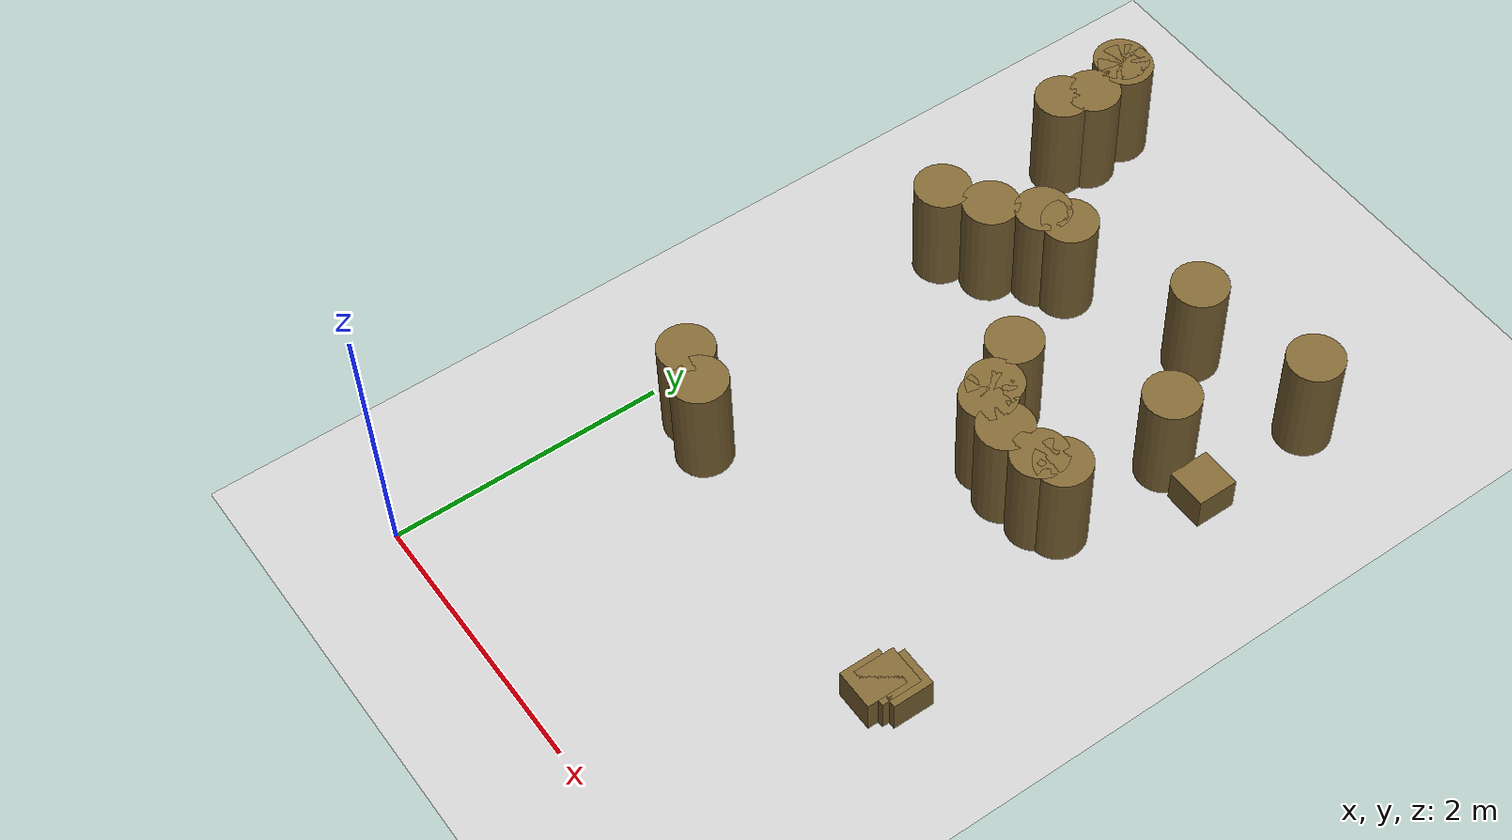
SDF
<sdf version="1.7">
 <world name="default">
  <model name="ground_plane">
   <static>1</static>
   <link name="link">
    <collision name="collision">
     <geometry><plane><normal>0 0 1</normal><size>100 100</size></plane></geometry>
     <surface><friction><ode><mu>100</mu><mu2>50</mu2></ode></friction></surface>
    </collision>
    <visual name="visual">
     <cast_shadows>0</cast_shadows>
     <geometry><plane><normal>0 0 1</normal><size>100 100</size></plane></geometry>
     <material>
      <script><uri>file://media/materials/scripts/gazebo.material</uri><name>Gazebo/Grey</name></script>
     </material>
    </visual>
   </link>
  </model>
  <model name="mini_cylinder_0_clone_0_clone_clone_clone_clone_12">
   <link name="link">
    <inertial>
     <mass>1</mass>
     <inertia><ixx>0.145833</ixx><ixy>0</ixy><ixz>0</ixz><iyy>0.145833</iyy><iyz>0</iyz><izz>0.125</izz></inertia>
    </inertial>
    <visual name="visual">
     <geometry><cylinder><radius>0.2</radius><length>0.8</length></cylinder></geometry>
     <material>
      <script><name>Gazebo/Grey</name><uri>file://media/materials/scripts/gazebo.material</uri></script>
      <shader type="vertex"><normal_map>__default__</normal_map></shader>
      <ambient>0.5 0.4 0.2 1</ambient>
      <diffuse>0.7 0.7 0.7 1</diffuse>
      <specular>0.01 0.01 0.01 1</specular>
      <emissive>0 0 0 1</emissive>
     </material>
    </visual>
    <collision name="collision">
     <geometry><cylinder><radius>0.2</radius><length>0.8</length></cylinder></geometry>
     <surface>
      <friction>
       <ode><mu>1</mu><mu2>1</mu2><fdir1>0 0 0</fdir1><slip1>0</slip1><slip2>0</slip2></ode>
       <torsional>
        <coefficient>1</coefficient>
        <patch_radius>0</patch_radius>
        <surface_radius>0</surface_radius>
        <use_patch_radius>1</use_patch_radius>
        <ode><slip>0</slip></ode>
       </torsional>
      </friction>
      <bounce><restitution_coefficient>0</restitution_coefficient><threshold>1e+06</threshold></bounce>
      <contact>
       <collide_without_contact>0</collide_without_contact>
       <collide_without_contact_bitmask>1</collide_without_contact_bitmask>
       <collide_bitmask>1</collide_bitmask>
       <ode>
        <soft_cfm>0</soft_cfm>
        <soft_erp>0.2</soft_erp>
        <kp>1e+13</kp>
        <kd>1</kd>
        <max_vel>0.01</max_vel>
        <min_depth>0</min_depth>
       </ode>
       <bullet>
        <split_impulse>1</split_impulse>
        <split_impulse_penetration_threshold>-0.01</split_impulse_penetration_threshold>
        <soft_cfm>0</soft_cfm>
        <soft_erp>0.2</soft_erp>
        <kp>1e+13</kp>
        <kd>1</kd>
       </bullet>
      </contact>
     </surface>
    </collision>
   </link>
   <static>1</static>
   <pose>1.56031 3.83174 0.4 0 -0 0</pose>
  </model>
  <model name="mini_cylinder_0_clone_0_clone_clone_clone_clone_clone">
   <link name="link">
    <inertial>
     <mass>1</mass>
     <inertia><ixx>0.145833</ixx><ixy>0</ixy><ixz>0</ixz><iyy>0.145833</iyy><iyz>0</iyz><izz>0.125</izz></inertia>
    </inertial>
    <visual name="visual">
     <geometry><cylinder><radius>0.2</radius><length>0.8</length></cylinder></geometry>
     <material>
      <script><name>Gazebo/Grey</name><uri>file://media/materials/scripts/gazebo.material</uri></script>
      <shader type="vertex"><normal_map>__default__</normal_map></shader>
      <ambient>0.5 0.4 0.2 1</ambient>
      <diffuse>0.7 0.7 0.7 1</diffuse>
      <specular>0.01 0.01 0.01 1</specular>
      <emissive>0 0 0 1</emissive>
     </material>
    </visual>
    <collision name="collision">
     <geometry><cylinder><radius>0.2</radius><length>0.8</length></cylinder></geometry>
     <surface>
      <friction>
       <ode><mu>1</mu><mu2>1</mu2><fdir1>0 0 0</fdir1><slip1>0</slip1><slip2>0</slip2></ode>
       <torsional>
        <coefficient>1</coefficient>
        <patch_radius>0</patch_radius>
        <surface_radius>0</surface_radius>
        <use_patch_radius>1</use_patch_radius>
        <ode><slip>0</slip></ode>
       </torsional>
      </friction>
      <bounce><restitution_coefficient>0</restitution_coefficient><threshold>1e+06</threshold></bounce>
      <contact>
       <collide_without_contact>0</collide_without_contact>
       <collide_without_contact_bitmask>1</collide_without_contact_bitmask>
       <collide_bitmask>1</collide_bitmask>
       <ode>
        <soft_cfm>0</soft_cfm>
        <soft_erp>0.2</soft_erp>
        <kp>1e+13</kp>
        <kd>1</kd>
        <max_vel>0.01</max_vel>
        <min_depth>0</min_depth>
       </ode>
       <bullet>
        <split_impulse>1</split_impulse>
        <split_impulse_penetration_threshold>-0.01</split_impulse_penetration_threshold>
        <soft_cfm>0</soft_cfm>
        <soft_erp>0.2</soft_erp>
        <kp>1e+13</kp>
        <kd>1</kd>
       </bullet>
      </contact>
     </surface>
    </collision>
   </link>
   <static>1</static>
   <pose>0.056527 5.99089 0.4 0 -0 0</pose>
  </model>
  <model name="mini_cylinder_0_clone_0_clone_clone_clone_clone_clone_0">
   <link name="link">
    <inertial>
     <mass>1</mass>
     <inertia><ixx>0.145833</ixx><ixy>0</ixy><ixz>0</ixz><iyy>0.145833</iyy><iyz>0</iyz><izz>0.125</izz></inertia>
    </inertial>
    <visual name="visual">
     <geometry><cylinder><radius>0.2</radius><length>0.8</length></cylinder></geometry>
     <material>
      <script><name>Gazebo/Grey</name><uri>file://media/materials/scripts/gazebo.material</uri></script>
      <shader type="vertex"><normal_map>__default__</normal_map></shader>
      <ambient>0.5 0.4 0.2 1</ambient>
      <diffuse>0.7 0.7 0.7 1</diffuse>
      <specular>0.01 0.01 0.01 1</specular>
      <emissive>0 0 0 1</emissive>
     </material>
    </visual>
    <collision name="collision">
     <geometry><cylinder><radius>0.2</radius><length>0.8</length></cylinder></geometry>
     <surface>
      <friction>
       <ode><mu>1</mu><mu2>1</mu2><fdir1>0 0 0</fdir1><slip1>0</slip1><slip2>0</slip2></ode>
       <torsional>
        <coefficient>1</coefficient>
        <patch_radius>0</patch_radius>
        <surface_radius>0</surface_radius>
        <use_patch_radius>1</use_patch_radius>
        <ode><slip>0</slip></ode>
       </torsional>
      </friction>
      <bounce><restitution_coefficient>0</restitution_coefficient><threshold>1e+06</threshold></bounce>
      <contact>
       <collide_without_contact>0</collide_without_contact>
       <collide_without_contact_bitmask>1</collide_without_contact_bitmask>
       <collide_bitmask>1</collide_bitmask>
       <ode>
        <soft_cfm>0</soft_cfm>
        <soft_erp>0.2</soft_erp>
        <kp>1e+13</kp>
        <kd>1</kd>
        <max_vel>0.01</max_vel>
        <min_depth>0</min_depth>
       </ode>
       <bullet>
        <split_impulse>1</split_impulse>
        <split_impulse_penetration_threshold>-0.01</split_impulse_penetration_threshold>
        <soft_cfm>0</soft_cfm>
        <soft_erp>0.2</soft_erp>
        <kp>1e+13</kp>
        <kd>1</kd>
       </bullet>
      </contact>
     </surface>
    </collision>
   </link>
   <static>1</static>
   <pose>0 6 0.4 0 -0 0</pose>
  </model>
  <model name="mini_cylinder_0_clone_0_clone_clone_clone_clone_clone_1">
   <link name="link">
    <inertial>
     <mass>1</mass>
     <inertia><ixx>0.145833</ixx><ixy>0</ixy><ixz>0</ixz><iyy>0.145833</iyy><iyz>0</iyz><izz>0.125</izz></inertia>
    </inertial>
    <visual name="visual">
     <geometry><cylinder><radius>0.2</radius><length>0.8</length></cylinder></geometry>
     <material>
      <script><name>Gazebo/Grey</name><uri>file://media/materials/scripts/gazebo.material</uri></script>
      <shader type="vertex"><normal_map>__default__</normal_map></shader>
      <ambient>0.5 0.4 0.2 1</ambient>
      <diffuse>0.7 0.7 0.7 1</diffuse>
      <specular>0.01 0.01 0.01 1</specular>
      <emissive>0 0 0 1</emissive>
     </material>
    </visual>
    <collision name="collision">
     <geometry><cylinder><radius>0.2</radius><length>0.8</length></cylinder></geometry>
     <surface>
      <friction>
       <ode><mu>1</mu><mu2>1</mu2><fdir1>0 0 0</fdir1><slip1>0</slip1><slip2>0</slip2></ode>
       <torsional>
        <coefficient>1</coefficient>
        <patch_radius>0</patch_radius>
        <surface_radius>0</surface_radius>
        <use_patch_radius>1</use_patch_radius>
        <ode><slip>0</slip></ode>
       </torsional>
      </friction>
      <bounce><restitution_coefficient>0</restitution_coefficient><threshold>1e+06</threshold></bounce>
      <contact>
       <collide_without_contact>0</collide_without_contact>
       <collide_without_contact_bitmask>1</collide_without_contact_bitmask>
       <collide_bitmask>1</collide_bitmask>
       <ode>
        <soft_cfm>0</soft_cfm>
        <soft_erp>0.2</soft_erp>
        <kp>1e+13</kp>
        <kd>1</kd>
        <max_vel>0.01</max_vel>
        <min_depth>0</min_depth>
       </ode>
       <bullet>
        <split_impulse>1</split_impulse>
        <split_impulse_penetration_threshold>-0.01</split_impulse_penetration_threshold>
        <soft_cfm>0</soft_cfm>
        <soft_erp>0.2</soft_erp>
        <kp>1e+13</kp>
        <kd>1</kd>
       </bullet>
      </contact>
     </surface>
    </collision>
   </link>
   <static>1</static>
   <pose>0.119435 5.64487 0.4 0 -0 0</pose>
  </model>
  <model name="mini_cylinder_0_clone_0_clone_clone_clone_clone_clone_2">
   <link name="link">
    <inertial>
     <mass>1</mass>
     <inertia><ixx>0.145833</ixx><ixy>0</ixy><ixz>0</ixz><iyy>0.145833</iyy><iyz>0</iyz><izz>0.125</izz></inertia>
    </inertial>
    <visual name="visual">
     <geometry><cylinder><radius>0.2</radius><length>0.8</length></cylinder></geometry>
     <material>
      <script><name>Gazebo/Grey</name><uri>file://media/materials/scripts/gazebo.material</uri></script>
      <shader type="vertex"><normal_map>__default__</normal_map></shader>
      <ambient>0.5 0.4 0.2 1</ambient>
      <diffuse>0.7 0.7 0.7 1</diffuse>
      <specular>0.01 0.01 0.01 1</specular>
      <emissive>0 0 0 1</emissive>
     </material>
    </visual>
    <collision name="collision">
     <geometry><cylinder><radius>0.2</radius><length>0.8</length></cylinder></geometry>
     <surface>
      <friction>
       <ode><mu>1</mu><mu2>1</mu2><fdir1>0 0 0</fdir1><slip1>0</slip1><slip2>0</slip2></ode>
       <torsional>
        <coefficient>1</coefficient>
        <patch_radius>0</patch_radius>
        <surface_radius>0</surface_radius>
        <use_patch_radius>1</use_patch_radius>
        <ode><slip>0</slip></ode>
       </torsional>
      </friction>
      <bounce><restitution_coefficient>0</restitution_coefficient><threshold>1e+06</threshold></bounce>
      <contact>
       <collide_without_contact>0</collide_without_contact>
       <collide_without_contact_bitmask>1</collide_without_contact_bitmask>
       <collide_bitmask>1</collide_bitmask>
       <ode>
        <soft_cfm>0</soft_cfm>
        <soft_erp>0.2</soft_erp>
        <kp>1e+13</kp>
        <kd>1</kd>
        <max_vel>0.01</max_vel>
        <min_depth>0</min_depth>
       </ode>
       <bullet>
        <split_impulse>1</split_impulse>
        <split_impulse_penetration_threshold>-0.01</split_impulse_penetration_threshold>
        <soft_cfm>0</soft_cfm>
        <soft_erp>0.2</soft_erp>
        <kp>1e+13</kp>
        <kd>1</kd>
       </bullet>
      </contact>
     </surface>
    </collision>
   </link>
   <static>1</static>
   <pose>0.040798 5.4404 0.4 0 -0 0</pose>
  </model>
  <model name="mini_cylinder_0_clone_0_clone_clone_clone_clone_clone_7">
   <link name="link">
    <inertial>
     <mass>1</mass>
     <inertia><ixx>0.145833</ixx><ixy>0</ixy><ixz>0</ixz><iyy>0.145833</iyy><iyz>0</iyz><izz>0.125</izz></inertia>
    </inertial>
    <visual name="visual">
     <geometry><cylinder><radius>0.2</radius><length>0.8</length></cylinder></geometry>
     <material>
      <script><name>Gazebo/Grey</name><uri>file://media/materials/scripts/gazebo.material</uri></script>
      <shader type="vertex"><normal_map>__default__</normal_map></shader>
      <ambient>0.5 0.4 0.2 1</ambient>
      <diffuse>0.7 0.7 0.7 1</diffuse>
      <specular>0.01 0.01 0.01 1</specular>
      <emissive>0 0 0 1</emissive>
     </material>
    </visual>
    <collision name="collision">
     <geometry><cylinder><radius>0.2</radius><length>0.8</length></cylinder></geometry>
     <surface>
      <friction>
       <ode><mu>1</mu><mu2>1</mu2><fdir1>0 0 0</fdir1><slip1>0</slip1><slip2>0</slip2></ode>
       <torsional>
        <coefficient>1</coefficient>
        <patch_radius>0</patch_radius>
        <surface_radius>0</surface_radius>
        <use_patch_radius>1</use_patch_radius>
        <ode><slip>0</slip></ode>
       </torsional>
      </friction>
      <bounce><restitution_coefficient>0</restitution_coefficient><threshold>1e+06</threshold></bounce>
      <contact>
       <collide_without_contact>0</collide_without_contact>
       <collide_without_contact_bitmask>1</collide_without_contact_bitmask>
       <collide_bitmask>1</collide_bitmask>
       <ode>
        <soft_cfm>0</soft_cfm>
        <soft_erp>0.2</soft_erp>
        <kp>1e+13</kp>
        <kd>1</kd>
        <max_vel>0.01</max_vel>
        <min_depth>0</min_depth>
       </ode>
       <bullet>
        <split_impulse>1</split_impulse>
        <split_impulse_penetration_threshold>-0.01</split_impulse_penetration_threshold>
        <soft_cfm>0</soft_cfm>
        <soft_erp>0.2</soft_erp>
        <kp>1e+13</kp>
        <kd>1</kd>
       </bullet>
      </contact>
     </surface>
    </collision>
   </link>
   <static>1</static>
   <pose>0.213809 4.26061 0.4 0 -0 0</pose>
  </model>
  <model name="mini_cylinder_0_clone_0_clone_clone_clone_clone_clone_8">
   <link name="link">
    <inertial>
     <mass>1</mass>
     <inertia><ixx>0.145833</ixx><ixy>0</ixy><ixz>0</ixz><iyy>0.145833</iyy><iyz>0</iyz><izz>0.125</izz></inertia>
    </inertial>
    <visual name="visual">
     <geometry><cylinder><radius>0.2</radius><length>0.8</length></cylinder></geometry>
     <material>
      <script><name>Gazebo/Grey</name><uri>file://media/materials/scripts/gazebo.material</uri></script>
      <shader type="vertex"><normal_map>__default__</normal_map></shader>
      <ambient>0.5 0.4 0.2 1</ambient>
      <diffuse>0.7 0.7 0.7 1</diffuse>
      <specular>0.01 0.01 0.01 1</specular>
      <emissive>0 0 0 1</emissive>
     </material>
    </visual>
    <collision name="collision">
     <geometry><cylinder><radius>0.2</radius><length>0.8</length></cylinder></geometry>
     <surface>
      <friction>
       <ode><mu>1</mu><mu2>1</mu2><fdir1>0 0 0</fdir1><slip1>0</slip1><slip2>0</slip2></ode>
       <torsional>
        <coefficient>1</coefficient>
        <patch_radius>0</patch_radius>
        <surface_radius>0</surface_radius>
        <use_patch_radius>1</use_patch_radius>
        <ode><slip>0</slip></ode>
       </torsional>
      </friction>
      <bounce><restitution_coefficient>0</restitution_coefficient><threshold>1e+06</threshold></bounce>
      <contact>
       <collide_without_contact>0</collide_without_contact>
       <collide_without_contact_bitmask>1</collide_without_contact_bitmask>
       <collide_bitmask>1</collide_bitmask>
       <ode>
        <soft_cfm>0</soft_cfm>
        <soft_erp>0.2</soft_erp>
        <kp>1e+13</kp>
        <kd>1</kd>
        <max_vel>0.01</max_vel>
        <min_depth>0</min_depth>
       </ode>
       <bullet>
        <split_impulse>1</split_impulse>
        <split_impulse_penetration_threshold>-0.01</split_impulse_penetration_threshold>
        <soft_cfm>0</soft_cfm>
        <soft_erp>0.2</soft_erp>
        <kp>1e+13</kp>
        <kd>1</kd>
       </bullet>
      </contact>
     </surface>
    </collision>
   </link>
   <static>1</static>
   <pose>0.528375 4.43362 0.4 0 -0 0</pose>
  </model>
  <model name="mini_cylinder_0_clone_0_clone_clone_clone_clone_clone_9">
   <link name="link">
    <inertial>
     <mass>1</mass>
     <inertia><ixx>0.145833</ixx><ixy>0</ixy><ixz>0</ixz><iyy>0.145833</iyy><iyz>0</iyz><izz>0.125</izz></inertia>
    </inertial>
    <visual name="visual">
     <geometry><cylinder><radius>0.2</radius><length>0.8</length></cylinder></geometry>
     <material>
      <script><name>Gazebo/Grey</name><uri>file://media/materials/scripts/gazebo.material</uri></script>
      <shader type="vertex"><normal_map>__default__</normal_map></shader>
      <ambient>0.5 0.4 0.2 1</ambient>
      <diffuse>0.7 0.7 0.7 1</diffuse>
      <specular>0.01 0.01 0.01 1</specular>
      <emissive>0 0 0 1</emissive>
     </material>
    </visual>
    <collision name="collision">
     <geometry><cylinder><radius>0.2</radius><length>0.8</length></cylinder></geometry>
     <surface>
      <friction>
       <ode><mu>1</mu><mu2>1</mu2><fdir1>0 0 0</fdir1><slip1>0</slip1><slip2>0</slip2></ode>
       <torsional>
        <coefficient>1</coefficient>
        <patch_radius>0</patch_radius>
        <surface_radius>0</surface_radius>
        <use_patch_radius>1</use_patch_radius>
        <ode><slip>0</slip></ode>
       </torsional>
      </friction>
      <bounce><restitution_coefficient>0</restitution_coefficient><threshold>1e+06</threshold></bounce>
      <contact>
       <collide_without_contact>0</collide_without_contact>
       <collide_without_contact_bitmask>1</collide_without_contact_bitmask>
       <collide_bitmask>1</collide_bitmask>
       <ode>
        <soft_cfm>0</soft_cfm>
        <soft_erp>0.2</soft_erp>
        <kp>1e+13</kp>
        <kd>1</kd>
        <max_vel>0.01</max_vel>
        <min_depth>0</min_depth>
       </ode>
       <bullet>
        <split_impulse>1</split_impulse>
        <split_impulse_penetration_threshold>-0.01</split_impulse_penetration_threshold>
        <soft_cfm>0</soft_cfm>
        <soft_erp>0.2</soft_erp>
        <kp>1e+13</kp>
        <kd>1</kd>
       </bullet>
      </contact>
     </surface>
    </collision>
   </link>
   <static>1</static>
   <pose>0.780027 4.68527 0.4 0 -0 0</pose>
  </model>
  <model name="mini_cylinder_0_clone_0_clone_clone_clone_clone_clone_38">
   <link name="link">
    <inertial>
     <mass>1</mass>
     <inertia><ixx>0.145833</ixx><ixy>0</ixy><ixz>0</ixz><iyy>0.145833</iyy><iyz>0</iyz><izz>0.125</izz></inertia>
    </inertial>
    <visual name="visual">
     <geometry><cylinder><radius>0.2</radius><length>0.8</length></cylinder></geometry>
     <material>
      <script><name>Gazebo/Grey</name><uri>file://media/materials/scripts/gazebo.material</uri></script>
      <shader type="vertex"><normal_map>__default__</normal_map></shader>
      <ambient>0.5 0.4 0.2 1</ambient>
      <diffuse>0.7 0.7 0.7 1</diffuse>
      <specular>0.01 0.01 0.01 1</specular>
      <emissive>0 0 0 1</emissive>
     </material>
    </visual>
    <collision name="collision">
     <geometry><cylinder><radius>0.2</radius><length>0.8</length></cylinder></geometry>
     <surface>
      <friction>
       <ode><mu>1</mu><mu2>1</mu2><fdir1>0 0 0</fdir1><slip1>0</slip1><slip2>0</slip2></ode>
       <torsional>
        <coefficient>1</coefficient>
        <patch_radius>0</patch_radius>
        <surface_radius>0</surface_radius>
        <use_patch_radius>1</use_patch_radius>
        <ode><slip>0</slip></ode>
       </torsional>
      </friction>
      <bounce><restitution_coefficient>0</restitution_coefficient><threshold>1e+06</threshold></bounce>
      <contact>
       <collide_without_contact>0</collide_without_contact>
       <collide_without_contact_bitmask>1</collide_without_contact_bitmask>
       <collide_bitmask>1</collide_bitmask>
       <ode>
        <soft_cfm>0</soft_cfm>
        <soft_erp>0.2</soft_erp>
        <kp>1e+13</kp>
        <kd>1</kd>
        <max_vel>0.01</max_vel>
        <min_depth>0</min_depth>
       </ode>
       <bullet>
        <split_impulse>1</split_impulse>
        <split_impulse_penetration_threshold>-0.01</split_impulse_penetration_threshold>
        <soft_cfm>0</soft_cfm>
        <soft_erp>0.2</soft_erp>
        <kp>1e+13</kp>
        <kd>1</kd>
       </bullet>
      </contact>
     </surface>
    </collision>
   </link>
   <static>1</static>
   <pose>2.82524 5.31414 0.4 0 -0 0</pose>
  </model>
  <model name="mini_cylinder_0_clone_0_clone_clone_clone_clone_clone_39">
   <link name="link">
    <inertial>
     <mass>1</mass>
     <inertia><ixx>0.145833</ixx><ixy>0</ixy><ixz>0</ixz><iyy>0.145833</iyy><iyz>0</iyz><izz>0.125</izz></inertia>
    </inertial>
    <visual name="visual">
     <geometry><cylinder><radius>0.2</radius><length>0.8</length></cylinder></geometry>
     <material>
      <script><name>Gazebo/Grey</name><uri>file://media/materials/scripts/gazebo.material</uri></script>
      <shader type="vertex"><normal_map>__default__</normal_map></shader>
      <ambient>0.5 0.4 0.2 1</ambient>
      <diffuse>0.7 0.7 0.7 1</diffuse>
      <specular>0.01 0.01 0.01 1</specular>
      <emissive>0 0 0 1</emissive>
     </material>
    </visual>
    <collision name="collision">
     <geometry><cylinder><radius>0.2</radius><length>0.8</length></cylinder></geometry>
     <surface>
      <friction>
       <ode><mu>1</mu><mu2>1</mu2><fdir1>0 0 0</fdir1><slip1>0</slip1><slip2>0</slip2></ode>
       <torsional>
        <coefficient>1</coefficient>
        <patch_radius>0</patch_radius>
        <surface_radius>0</surface_radius>
        <use_patch_radius>1</use_patch_radius>
        <ode><slip>0</slip></ode>
       </torsional>
      </friction>
      <bounce><restitution_coefficient>0</restitution_coefficient><threshold>1e+06</threshold></bounce>
      <contact>
       <collide_without_contact>0</collide_without_contact>
       <collide_without_contact_bitmask>1</collide_without_contact_bitmask>
       <collide_bitmask>1</collide_bitmask>
       <ode>
        <soft_cfm>0</soft_cfm>
        <soft_erp>0.2</soft_erp>
        <kp>1e+13</kp>
        <kd>1</kd>
        <max_vel>0.01</max_vel>
        <min_depth>0</min_depth>
       </ode>
       <bullet>
        <split_impulse>1</split_impulse>
        <split_impulse_penetration_threshold>-0.01</split_impulse_penetration_threshold>
        <soft_cfm>0</soft_cfm>
        <soft_erp>0.2</soft_erp>
        <kp>1e+13</kp>
        <kd>1</kd>
       </bullet>
      </contact>
     </surface>
    </collision>
   </link>
   <static>1</static>
   <pose>1.913 5.10967 0.4 0 -0 0</pose>
  </model>
  <model name="mini_cylinder_0_clone_0_clone_clone_clone_clone_clone_40">
   <link name="link">
    <inertial>
     <mass>1</mass>
     <inertia><ixx>0.145833</ixx><ixy>0</ixy><ixz>0</ixz><iyy>0.145833</iyy><iyz>0</iyz><izz>0.125</izz></inertia>
    </inertial>
    <visual name="visual">
     <geometry><cylinder><radius>0.2</radius><length>0.8</length></cylinder></geometry>
     <material>
      <script><name>Gazebo/Grey</name><uri>file://media/materials/scripts/gazebo.material</uri></script>
      <shader type="vertex"><normal_map>__default__</normal_map></shader>
      <ambient>0.5 0.4 0.2 1</ambient>
      <diffuse>0.7 0.7 0.7 1</diffuse>
      <specular>0.01 0.01 0.01 1</specular>
      <emissive>0 0 0 1</emissive>
     </material>
    </visual>
    <collision name="collision">
     <geometry><cylinder><radius>0.2</radius><length>0.8</length></cylinder></geometry>
     <surface>
      <friction>
       <ode><mu>1</mu><mu2>1</mu2><fdir1>0 0 0</fdir1><slip1>0</slip1><slip2>0</slip2></ode>
       <torsional>
        <coefficient>1</coefficient>
        <patch_radius>0</patch_radius>
        <surface_radius>0</surface_radius>
        <use_patch_radius>1</use_patch_radius>
        <ode><slip>0</slip></ode>
       </torsional>
      </friction>
      <bounce><restitution_coefficient>0</restitution_coefficient><threshold>1e+06</threshold></bounce>
      <contact>
       <collide_without_contact>0</collide_without_contact>
       <collide_without_contact_bitmask>1</collide_without_contact_bitmask>
       <collide_bitmask>1</collide_bitmask>
       <ode>
        <soft_cfm>0</soft_cfm>
        <soft_erp>0.2</soft_erp>
        <kp>1e+13</kp>
        <kd>1</kd>
        <max_vel>0.01</max_vel>
        <min_depth>0</min_depth>
       </ode>
       <bullet>
        <split_impulse>1</split_impulse>
        <split_impulse_penetration_threshold>-0.01</split_impulse_penetration_threshold>
        <soft_cfm>0</soft_cfm>
        <soft_erp>0.2</soft_erp>
        <kp>1e+13</kp>
        <kd>1</kd>
       </bullet>
      </contact>
     </surface>
    </collision>
   </link>
   <static>1</static>
   <pose>2.51068 4.37044 0.4 0 -0 0</pose>
  </model>
  <model name="mini_cylinder_0_clone_0_clone_clone_clone_clone_clone_42">
   <link name="link">
    <inertial>
     <mass>1</mass>
     <inertia><ixx>0.145833</ixx><ixy>0</ixy><ixz>0</ixz><iyy>0.145833</iyy><iyz>0</iyz><izz>0.125</izz></inertia>
    </inertial>
    <visual name="visual">
     <geometry><cylinder><radius>0.2</radius><length>0.8</length></cylinder></geometry>
     <material>
      <script><name>Gazebo/Grey</name><uri>file://media/materials/scripts/gazebo.material</uri></script>
      <shader type="vertex"><normal_map>__default__</normal_map></shader>
      <ambient>0.5 0.4 0.2 1</ambient>
      <diffuse>0.7 0.7 0.7 1</diffuse>
      <specular>0.01 0.01 0.01 1</specular>
      <emissive>0 0 0 1</emissive>
     </material>
    </visual>
    <collision name="collision">
     <geometry><cylinder><radius>0.2</radius><length>0.8</length></cylinder></geometry>
     <surface>
      <friction>
       <ode><mu>1</mu><mu2>1</mu2><fdir1>0 0 0</fdir1><slip1>0</slip1><slip2>0</slip2></ode>
       <torsional>
        <coefficient>1</coefficient>
        <patch_radius>0</patch_radius>
        <surface_radius>0</surface_radius>
        <use_patch_radius>1</use_patch_radius>
        <ode><slip>0</slip></ode>
       </torsional>
      </friction>
      <bounce><restitution_coefficient>0</restitution_coefficient><threshold>1e+06</threshold></bounce>
      <contact>
       <collide_without_contact>0</collide_without_contact>
       <collide_without_contact_bitmask>1</collide_without_contact_bitmask>
       <collide_bitmask>1</collide_bitmask>
       <ode>
        <soft_cfm>0</soft_cfm>
        <soft_erp>0.2</soft_erp>
        <kp>1e+13</kp>
        <kd>1</kd>
        <max_vel>0.01</max_vel>
        <min_depth>0</min_depth>
       </ode>
       <bullet>
        <split_impulse>1</split_impulse>
        <split_impulse_penetration_threshold>-0.01</split_impulse_penetration_threshold>
        <soft_cfm>0</soft_cfm>
        <soft_erp>0.2</soft_erp>
        <kp>1e+13</kp>
        <kd>1</kd>
       </bullet>
      </contact>
     </surface>
    </collision>
   </link>
   <static>1</static>
   <pose>0.623278 1.99546 0.4 0 -0 0</pose>
  </model>
  <model name="mini_cylinder_0_clone_0_clone_clone_clone_clone_clone_43">
   <link name="link">
    <inertial>
     <mass>1</mass>
     <inertia><ixx>0.145833</ixx><ixy>0</ixy><ixz>0</ixz><iyy>0.145833</iyy><iyz>0</iyz><izz>0.125</izz></inertia>
    </inertial>
    <visual name="visual">
     <geometry><cylinder><radius>0.2</radius><length>0.8</length></cylinder></geometry>
     <material>
      <script><name>Gazebo/Grey</name><uri>file://media/materials/scripts/gazebo.material</uri></script>
      <shader type="vertex"><normal_map>__default__</normal_map></shader>
      <ambient>0.5 0.4 0.2 1</ambient>
      <diffuse>0.7 0.7 0.7 1</diffuse>
      <specular>0.01 0.01 0.01 1</specular>
      <emissive>0 0 0 1</emissive>
     </material>
    </visual>
    <collision name="collision">
     <geometry><cylinder><radius>0.2</radius><length>0.8</length></cylinder></geometry>
     <surface>
      <friction>
       <ode><mu>1</mu><mu2>1</mu2><fdir1>0 0 0</fdir1><slip1>0</slip1><slip2>0</slip2></ode>
       <torsional>
        <coefficient>1</coefficient>
        <patch_radius>0</patch_radius>
        <surface_radius>0</surface_radius>
        <use_patch_radius>1</use_patch_radius>
        <ode><slip>0</slip></ode>
       </torsional>
      </friction>
      <bounce><restitution_coefficient>0</restitution_coefficient><threshold>1e+06</threshold></bounce>
      <contact>
       <collide_without_contact>0</collide_without_contact>
       <collide_without_contact_bitmask>1</collide_without_contact_bitmask>
       <collide_bitmask>1</collide_bitmask>
       <ode>
        <soft_cfm>0</soft_cfm>
        <soft_erp>0.2</soft_erp>
        <kp>1e+13</kp>
        <kd>1</kd>
        <max_vel>0.01</max_vel>
        <min_depth>0</min_depth>
       </ode>
       <bullet>
        <split_impulse>1</split_impulse>
        <split_impulse_penetration_threshold>-0.01</split_impulse_penetration_threshold>
        <soft_cfm>0</soft_cfm>
        <soft_erp>0.2</soft_erp>
        <kp>1e+13</kp>
        <kd>1</kd>
       </bullet>
      </contact>
     </surface>
    </collision>
   </link>
   <static>1</static>
   <pose>0.355897 2.0741 0.4 0 -0 0</pose>
  </model>
  <model name="mini_box_0.3_clone_6">
   <link name="link">
    <inertial>
     <mass>1</mass>
     <inertia>
      <ixx>0.166667</ixx>
      <ixy>0</ixy>
      <ixz>0</ixz>
      <iyy>0.166667</iyy>
      <iyz>0</iyz>
      <izz>0.166667</izz>
     </inertia>
    </inertial>
    <visual name="visual">
     <geometry><box><size>0.3 0.3 0.5</size></box></geometry>
     <material>
      <script><name>Gazebo/Grey</name><uri>file://media/materials/scripts/gazebo.material</uri></script>
      <shader type="vertex"><normal_map>__default__</normal_map></shader>
      <ambient>0.5 0.4 0.2 1</ambient>
      <diffuse>0.7 0.7 0.7 1</diffuse>
      <specular>0.01 0.01 0.01 1</specular>
      <emissive>0 0 0 1</emissive>
     </material>
    </visual>
    <collision name="collision">
     <geometry><box><size>0.3 0.3 0.3</size></box></geometry>
     <surface>
      <friction>
       <ode><mu>1</mu><mu2>1</mu2><fdir1>0 0 0</fdir1><slip1>0</slip1><slip2>0</slip2></ode>
       <torsional>
        <coefficient>1</coefficient>
        <patch_radius>0</patch_radius>
        <surface_radius>0</surface_radius>
        <use_patch_radius>1</use_patch_radius>
        <ode><slip>0</slip></ode>
       </torsional>
      </friction>
      <bounce><restitution_coefficient>0</restitution_coefficient><threshold>1e+06</threshold></bounce>
      <contact>
       <collide_without_contact>0</collide_without_contact>
       <collide_without_contact_bitmask>1</collide_without_contact_bitmask>
       <collide_bitmask>1</collide_bitmask>
       <ode>
        <soft_cfm>0</soft_cfm>
        <soft_erp>0.2</soft_erp>
        <kp>1e+13</kp>
        <kd>1</kd>
        <max_vel>0.01</max_vel>
        <min_depth>0</min_depth>
       </ode>
       <bullet>
        <split_impulse>1</split_impulse>
        <split_impulse_penetration_threshold>-0.01</split_impulse_penetration_threshold>
        <soft_cfm>0</soft_cfm>
        <soft_erp>0.2</soft_erp>
        <kp>1e+13</kp>
        <kd>1</kd>
       </bullet>
      </contact>
     </surface>
    </collision>
   </link>
   <static>1</static>
   <pose>2.91294 1.91073 0 0 -0 0</pose>
  </model>
  <model name="mini_box_0.3_clone_7">
   <link name="link">
    <inertial>
     <mass>1</mass>
     <inertia>
      <ixx>0.166667</ixx>
      <ixy>0</ixy>
      <ixz>0</ixz>
      <iyy>0.166667</iyy>
      <iyz>0</iyz>
      <izz>0.166667</izz>
     </inertia>
    </inertial>
    <visual name="visual">
     <geometry><box><size>0.3 0.3 0.5</size></box></geometry>
     <material>
      <script><name>Gazebo/Grey</name><uri>file://media/materials/scripts/gazebo.material</uri></script>
      <shader type="vertex"><normal_map>__default__</normal_map></shader>
      <ambient>0.5 0.4 0.2 1</ambient>
      <diffuse>0.7 0.7 0.7 1</diffuse>
      <specular>0.01 0.01 0.01 1</specular>
      <emissive>0 0 0 1</emissive>
     </material>
    </visual>
    <collision name="collision">
     <geometry><box><size>0.3 0.3 0.3</size></box></geometry>
     <surface>
      <friction>
       <ode><mu>1</mu><mu2>1</mu2><fdir1>0 0 0</fdir1><slip1>0</slip1><slip2>0</slip2></ode>
       <torsional>
        <coefficient>1</coefficient>
        <patch_radius>0</patch_radius>
        <surface_radius>0</surface_radius>
        <use_patch_radius>1</use_patch_radius>
        <ode><slip>0</slip></ode>
       </torsional>
      </friction>
      <bounce><restitution_coefficient>0</restitution_coefficient><threshold>1e+06</threshold></bounce>
      <contact>
       <collide_without_contact>0</collide_without_contact>
       <collide_without_contact_bitmask>1</collide_without_contact_bitmask>
       <collide_bitmask>1</collide_bitmask>
       <ode>
        <soft_cfm>0</soft_cfm>
        <soft_erp>0.2</soft_erp>
        <kp>1e+13</kp>
        <kd>1</kd>
        <max_vel>0.01</max_vel>
        <min_depth>0</min_depth>
       </ode>
       <bullet>
        <split_impulse>1</split_impulse>
        <split_impulse_penetration_threshold>-0.01</split_impulse_penetration_threshold>
        <soft_cfm>0</soft_cfm>
        <soft_erp>0.2</soft_erp>
        <kp>1e+13</kp>
        <kd>1</kd>
       </bullet>
      </contact>
     </surface>
    </collision>
   </link>
   <static>1</static>
   <pose>2.86121 1.859 0 0 -0 0</pose>
  </model>
  <model name="mini_box_0.3_clone_8">
   <link name="link">
    <inertial>
     <mass>1</mass>
     <inertia>
      <ixx>0.166667</ixx>
      <ixy>0</ixy>
      <ixz>0</ixz>
      <iyy>0.166667</iyy>
      <iyz>0</iyz>
      <izz>0.166667</izz>
     </inertia>
    </inertial>
    <visual name="visual">
     <geometry><box><size>0.3 0.3 0.5</size></box></geometry>
     <material>
      <script><name>Gazebo/Grey</name><uri>file://media/materials/scripts/gazebo.material</uri></script>
      <shader type="vertex"><normal_map>__default__</normal_map></shader>
      <ambient>0.5 0.4 0.2 1</ambient>
      <diffuse>0.7 0.7 0.7 1</diffuse>
      <specular>0.01 0.01 0.01 1</specular>
      <emissive>0 0 0 1</emissive>
     </material>
    </visual>
    <collision name="collision">
     <geometry><box><size>0.3 0.3 0.3</size></box></geometry>
     <surface>
      <friction>
       <ode><mu>1</mu><mu2>1</mu2><fdir1>0 0 0</fdir1><slip1>0</slip1><slip2>0</slip2></ode>
       <torsional>
        <coefficient>1</coefficient>
        <patch_radius>0</patch_radius>
        <surface_radius>0</surface_radius>
        <use_patch_radius>1</use_patch_radius>
        <ode><slip>0</slip></ode>
       </torsional>
      </friction>
      <bounce><restitution_coefficient>0</restitution_coefficient><threshold>1e+06</threshold></bounce>
      <contact>
       <collide_without_contact>0</collide_without_contact>
       <collide_without_contact_bitmask>1</collide_without_contact_bitmask>
       <collide_bitmask>1</collide_bitmask>
       <ode>
        <soft_cfm>0</soft_cfm>
        <soft_erp>0.2</soft_erp>
        <kp>1e+13</kp>
        <kd>1</kd>
        <max_vel>0.01</max_vel>
        <min_depth>0</min_depth>
       </ode>
       <bullet>
        <split_impulse>1</split_impulse>
        <split_impulse_penetration_threshold>-0.01</split_impulse_penetration_threshold>
        <soft_cfm>0</soft_cfm>
        <soft_erp>0.2</soft_erp>
        <kp>1e+13</kp>
        <kd>1</kd>
       </bullet>
      </contact>
     </surface>
    </collision>
   </link>
   <static>1</static>
   <pose>2.81809 1.7814 0 0 -0 0</pose>
  </model>
  <model name="mini_box_0.3_clone_12_clone_7">
   <link name="link">
    <inertial>
     <mass>1</mass>
     <inertia>
      <ixx>0.166667</ixx>
      <ixy>0</ixy>
      <ixz>0</ixz>
      <iyy>0.166667</iyy>
      <iyz>0</iyz>
      <izz>0.166667</izz>
     </inertia>
    </inertial>
    <visual name="visual">
     <geometry><box><size>0.3 0.3 0.5</size></box></geometry>
     <material>
      <script><name>Gazebo/Grey</name><uri>file://media/materials/scripts/gazebo.material</uri></script>
      <shader type="vertex"><normal_map>__default__</normal_map></shader>
      <ambient>0.5 0.4 0.2 1</ambient>
      <diffuse>0.7 0.7 0.7 1</diffuse>
      <specular>0.01 0.01 0.01 1</specular>
      <emissive>0 0 0 1</emissive>
     </material>
    </visual>
    <collision name="collision">
     <geometry><box><size>0.3 0.3 0.3</size></box></geometry>
     <surface>
      <friction>
       <ode><mu>1</mu><mu2>1</mu2><fdir1>0 0 0</fdir1><slip1>0</slip1><slip2>0</slip2></ode>
       <torsional>
        <coefficient>1</coefficient>
        <patch_radius>0</patch_radius>
        <surface_radius>0</surface_radius>
        <use_patch_radius>1</use_patch_radius>
        <ode><slip>0</slip></ode>
       </torsional>
      </friction>
      <bounce><restitution_coefficient>0</restitution_coefficient><threshold>1e+06</threshold></bounce>
      <contact>
       <collide_without_contact>0</collide_without_contact>
       <collide_without_contact_bitmask>1</collide_without_contact_bitmask>
       <collide_bitmask>1</collide_bitmask>
       <ode>
        <soft_cfm>0</soft_cfm>
        <soft_erp>0.2</soft_erp>
        <kp>1e+13</kp>
        <kd>1</kd>
        <max_vel>0.01</max_vel>
        <min_depth>0</min_depth>
       </ode>
       <bullet>
        <split_impulse>1</split_impulse>
        <split_impulse_penetration_threshold>-0.01</split_impulse_penetration_threshold>
        <soft_cfm>0</soft_cfm>
        <soft_erp>0.2</soft_erp>
        <kp>1e+13</kp>
        <kd>1</kd>
       </bullet>
      </contact>
     </surface>
    </collision>
   </link>
   <static>1</static>
   <pose>2.85422 4.40516 0 0 -0 0</pose>
  </model>
  <model name="mini_cylinder_0_clone_0_clone_clone_clone_clone_clone_49_clone_31">
   <link name="link">
    <inertial>
     <mass>1</mass>
     <inertia><ixx>0.145833</ixx><ixy>0</ixy><ixz>0</ixz><iyy>0.145833</iyy><iyz>0</iyz><izz>0.125</izz></inertia>
    </inertial>
    <visual name="visual">
     <geometry><cylinder><radius>0.2</radius><length>0.8</length></cylinder></geometry>
     <material>
      <script><name>Gazebo/Grey</name><uri>file://media/materials/scripts/gazebo.material</uri></script>
      <shader type="vertex"><normal_map>__default__</normal_map></shader>
      <ambient>0.5 0.4 0.2 1</ambient>
      <diffuse>0.7 0.7 0.7 1</diffuse>
      <specular>0.01 0.01 0.01 1</specular>
      <emissive>0 0 0 1</emissive>
     </material>
    </visual>
    <collision name="collision">
     <geometry><cylinder><radius>0.2</radius><length>0.8</length></cylinder></geometry>
     <surface>
      <friction>
       <ode><mu>1</mu><mu2>1</mu2><fdir1>0 0 0</fdir1><slip1>0</slip1><slip2>0</slip2></ode>
       <torsional>
        <coefficient>1</coefficient>
        <patch_radius>0</patch_radius>
        <surface_radius>0</surface_radius>
        <use_patch_radius>1</use_patch_radius>
        <ode><slip>0</slip></ode>
       </torsional>
      </friction>
      <bounce><restitution_coefficient>0</restitution_coefficient><threshold>1e+06</threshold></bounce>
      <contact>
       <collide_without_contact>0</collide_without_contact>
       <collide_without_contact_bitmask>1</collide_without_contact_bitmask>
       <collide_bitmask>1</collide_bitmask>
       <ode>
        <soft_cfm>0</soft_cfm>
        <soft_erp>0.2</soft_erp>
        <kp>1e+13</kp>
        <kd>1</kd>
        <max_vel>0.01</max_vel>
        <min_depth>0</min_depth>
       </ode>
       <bullet>
        <split_impulse>1</split_impulse>
        <split_impulse_penetration_threshold>-0.01</split_impulse_penetration_threshold>
        <soft_cfm>0</soft_cfm>
        <soft_erp>0.2</soft_erp>
        <kp>1e+13</kp>
        <kd>1</kd>
       </bullet>
      </contact>
     </surface>
    </collision>
   </link>
   <static>1</static>
   <pose>1.76063 3.51693 0.4 0 -0 0</pose>
  </model>
  <model name="mini_cylinder_0_clone_0_clone_clone_clone_clone_clone_49_clone_32">
   <link name="link">
    <inertial>
     <mass>1</mass>
     <inertia><ixx>0.145833</ixx><ixy>0</ixy><ixz>0</ixz><iyy>0.145833</iyy><iyz>0</iyz><izz>0.125</izz></inertia>
    </inertial>
    <visual name="visual">
     <geometry><cylinder><radius>0.2</radius><length>0.8</length></cylinder></geometry>
     <material>
      <script><name>Gazebo/Grey</name><uri>file://media/materials/scripts/gazebo.material</uri></script>
      <shader type="vertex"><normal_map>__default__</normal_map></shader>
      <ambient>0.5 0.4 0.2 1</ambient>
      <diffuse>0.7 0.7 0.7 1</diffuse>
      <specular>0.01 0.01 0.01 1</specular>
      <emissive>0 0 0 1</emissive>
     </material>
    </visual>
    <collision name="collision">
     <geometry><cylinder><radius>0.2</radius><length>0.8</length></cylinder></geometry>
     <surface>
      <friction>
       <ode><mu>1</mu><mu2>1</mu2><fdir1>0 0 0</fdir1><slip1>0</slip1><slip2>0</slip2></ode>
       <torsional>
        <coefficient>1</coefficient>
        <patch_radius>0</patch_radius>
        <surface_radius>0</surface_radius>
        <use_patch_radius>1</use_patch_radius>
        <ode><slip>0</slip></ode>
       </torsional>
      </friction>
      <bounce><restitution_coefficient>0</restitution_coefficient><threshold>1e+06</threshold></bounce>
      <contact>
       <collide_without_contact>0</collide_without_contact>
       <collide_without_contact_bitmask>1</collide_without_contact_bitmask>
       <collide_bitmask>1</collide_bitmask>
       <ode>
        <soft_cfm>0</soft_cfm>
        <soft_erp>0.2</soft_erp>
        <kp>1e+13</kp>
        <kd>1</kd>
        <max_vel>0.01</max_vel>
        <min_depth>0</min_depth>
       </ode>
       <bullet>
        <split_impulse>1</split_impulse>
        <split_impulse_penetration_threshold>-0.01</split_impulse_penetration_threshold>
        <soft_cfm>0</soft_cfm>
        <soft_erp>0.2</soft_erp>
        <kp>1e+13</kp>
        <kd>1</kd>
       </bullet>
      </contact>
     </surface>
    </collision>
   </link>
   <static>1</static>
   <pose>1.82003 3.41791 0.4 0 -0 0</pose>
  </model>
  <model name="mini_cylinder_0_clone_0_clone_clone_clone_clone_clone_49_clone_33">
   <link name="link">
    <inertial>
     <mass>1</mass>
     <inertia><ixx>0.145833</ixx><ixy>0</ixy><ixz>0</ixz><iyy>0.145833</iyy><iyz>0</iyz><izz>0.125</izz></inertia>
    </inertial>
    <visual name="visual">
     <geometry><cylinder><radius>0.2</radius><length>0.8</length></cylinder></geometry>
     <material>
      <script><name>Gazebo/Grey</name><uri>file://media/materials/scripts/gazebo.material</uri></script>
      <shader type="vertex"><normal_map>__default__</normal_map></shader>
      <ambient>0.5 0.4 0.2 1</ambient>
      <diffuse>0.7 0.7 0.7 1</diffuse>
      <specular>0.01 0.01 0.01 1</specular>
      <emissive>0 0 0 1</emissive>
     </material>
    </visual>
    <collision name="collision">
     <geometry><cylinder><radius>0.2</radius><length>0.8</length></cylinder></geometry>
     <surface>
      <friction>
       <ode><mu>1</mu><mu2>1</mu2><fdir1>0 0 0</fdir1><slip1>0</slip1><slip2>0</slip2></ode>
       <torsional>
        <coefficient>1</coefficient>
        <patch_radius>0</patch_radius>
        <surface_radius>0</surface_radius>
        <use_patch_radius>1</use_patch_radius>
        <ode><slip>0</slip></ode>
       </torsional>
      </friction>
      <bounce><restitution_coefficient>0</restitution_coefficient><threshold>1e+06</threshold></bounce>
      <contact>
       <collide_without_contact>0</collide_without_contact>
       <collide_without_contact_bitmask>1</collide_without_contact_bitmask>
       <collide_bitmask>1</collide_bitmask>
       <ode>
        <soft_cfm>0</soft_cfm>
        <soft_erp>0.2</soft_erp>
        <kp>1e+13</kp>
        <kd>1</kd>
        <max_vel>0.01</max_vel>
        <min_depth>0</min_depth>
       </ode>
       <bullet>
        <split_impulse>1</split_impulse>
        <split_impulse_penetration_threshold>-0.01</split_impulse_penetration_threshold>
        <soft_cfm>0</soft_cfm>
        <soft_erp>0.2</soft_erp>
        <kp>1e+13</kp>
        <kd>1</kd>
       </bullet>
      </contact>
     </surface>
    </collision>
   </link>
   <static>1</static>
   <pose>2.07748 3.3585 0.4 0 -0 0</pose>
  </model>
  <model name="mini_cylinder_0_clone_0_clone_clone_clone_clone_clone_49_clone_34">
   <link name="link">
    <inertial>
     <mass>1</mass>
     <inertia><ixx>0.145833</ixx><ixy>0</ixy><ixz>0</ixz><iyy>0.145833</iyy><iyz>0</iyz><izz>0.125</izz></inertia>
    </inertial>
    <visual name="visual">
     <geometry><cylinder><radius>0.2</radius><length>0.8</length></cylinder></geometry>
     <material>
      <script><name>Gazebo/Grey</name><uri>file://media/materials/scripts/gazebo.material</uri></script>
      <shader type="vertex"><normal_map>__default__</normal_map></shader>
      <ambient>0.5 0.4 0.2 1</ambient>
      <diffuse>0.7 0.7 0.7 1</diffuse>
      <specular>0.01 0.01 0.01 1</specular>
      <emissive>0 0 0 1</emissive>
     </material>
    </visual>
    <collision name="collision">
     <geometry><cylinder><radius>0.2</radius><length>0.8</length></cylinder></geometry>
     <surface>
      <friction>
       <ode><mu>1</mu><mu2>1</mu2><fdir1>0 0 0</fdir1><slip1>0</slip1><slip2>0</slip2></ode>
       <torsional>
        <coefficient>1</coefficient>
        <patch_radius>0</patch_radius>
        <surface_radius>0</surface_radius>
        <use_patch_radius>1</use_patch_radius>
        <ode><slip>0</slip></ode>
       </torsional>
      </friction>
      <bounce><restitution_coefficient>0</restitution_coefficient><threshold>1e+06</threshold></bounce>
      <contact>
       <collide_without_contact>0</collide_without_contact>
       <collide_without_contact_bitmask>1</collide_without_contact_bitmask>
       <collide_bitmask>1</collide_bitmask>
       <ode>
        <soft_cfm>0</soft_cfm>
        <soft_erp>0.2</soft_erp>
        <kp>1e+13</kp>
        <kd>1</kd>
        <max_vel>0.01</max_vel>
        <min_depth>0</min_depth>
       </ode>
       <bullet>
        <split_impulse>1</split_impulse>
        <split_impulse_penetration_threshold>-0.01</split_impulse_penetration_threshold>
        <soft_cfm>0</soft_cfm>
        <soft_erp>0.2</soft_erp>
        <kp>1e+13</kp>
        <kd>1</kd>
       </bullet>
      </contact>
     </surface>
    </collision>
   </link>
   <static>1</static>
   <pose>2.37456 3.3981 0.4 0 -0 0</pose>
  </model>
  <model name="mini_cylinder_0_clone_0_clone_clone_clone_clone_clone_49_clone_35">
   <link name="link">
    <inertial>
     <mass>1</mass>
     <inertia><ixx>0.145833</ixx><ixy>0</ixy><ixz>0</ixz><iyy>0.145833</iyy><iyz>0</iyz><izz>0.125</izz></inertia>
    </inertial>
    <visual name="visual">
     <geometry><cylinder><radius>0.2</radius><length>0.8</length></cylinder></geometry>
     <material>
      <script><name>Gazebo/Grey</name><uri>file://media/materials/scripts/gazebo.material</uri></script>
      <shader type="vertex"><normal_map>__default__</normal_map></shader>
      <ambient>0.5 0.4 0.2 1</ambient>
      <diffuse>0.7 0.7 0.7 1</diffuse>
      <specular>0.01 0.01 0.01 1</specular>
      <emissive>0 0 0 1</emissive>
     </material>
    </visual>
    <collision name="collision">
     <geometry><cylinder><radius>0.2</radius><length>0.8</length></cylinder></geometry>
     <surface>
      <friction>
       <ode><mu>1</mu><mu2>1</mu2><fdir1>0 0 0</fdir1><slip1>0</slip1><slip2>0</slip2></ode>
       <torsional>
        <coefficient>1</coefficient>
        <patch_radius>0</patch_radius>
        <surface_radius>0</surface_radius>
        <use_patch_radius>1</use_patch_radius>
        <ode><slip>0</slip></ode>
       </torsional>
      </friction>
      <bounce><restitution_coefficient>0</restitution_coefficient><threshold>1e+06</threshold></bounce>
      <contact>
       <collide_without_contact>0</collide_without_contact>
       <collide_without_contact_bitmask>1</collide_without_contact_bitmask>
       <collide_bitmask>1</collide_bitmask>
       <ode>
        <soft_cfm>0</soft_cfm>
        <soft_erp>0.2</soft_erp>
        <kp>1e+13</kp>
        <kd>1</kd>
        <max_vel>0.01</max_vel>
        <min_depth>0</min_depth>
       </ode>
       <bullet>
        <split_impulse>1</split_impulse>
        <split_impulse_penetration_threshold>-0.01</split_impulse_penetration_threshold>
        <soft_cfm>0</soft_cfm>
        <soft_erp>0.2</soft_erp>
        <kp>1e+13</kp>
        <kd>1</kd>
       </bullet>
      </contact>
     </surface>
    </collision>
   </link>
   <static>1</static>
   <pose>2.5132 3.47732 0.4 0 -0 0</pose>
  </model>
  <model name="mini_cylinder_0_clone_0_clone_clone_clone_clone_clone_49_clone_55">
   <link name="link">
    <inertial>
     <mass>1</mass>
     <inertia><ixx>0.145833</ixx><ixy>0</ixy><ixz>0</ixz><iyy>0.145833</iyy><iyz>0</iyz><izz>0.125</izz></inertia>
    </inertial>
    <visual name="visual">
     <geometry><cylinder><radius>0.2</radius><length>0.8</length></cylinder></geometry>
     <material>
      <script><name>Gazebo/Grey</name><uri>file://media/materials/scripts/gazebo.material</uri></script>
      <shader type="vertex"><normal_map>__default__</normal_map></shader>
      <ambient>0.5 0.4 0.2 1</ambient>
      <diffuse>0.7 0.7 0.7 1</diffuse>
      <specular>0.01 0.01 0.01 1</specular>
      <emissive>0 0 0 1</emissive>
     </material>
    </visual>
    <collision name="collision">
     <geometry><cylinder><radius>0.2</radius><length>0.8</length></cylinder></geometry>
     <surface>
      <friction>
       <ode><mu>1</mu><mu2>1</mu2><fdir1>0 0 0</fdir1><slip1>0</slip1><slip2>0</slip2></ode>
       <torsional>
        <coefficient>1</coefficient>
        <patch_radius>0</patch_radius>
        <surface_radius>0</surface_radius>
        <use_patch_radius>1</use_patch_radius>
        <ode><slip>0</slip></ode>
       </torsional>
      </friction>
      <bounce><restitution_coefficient>0</restitution_coefficient><threshold>1e+06</threshold></bounce>
      <contact>
       <collide_without_contact>0</collide_without_contact>
       <collide_without_contact_bitmask>1</collide_without_contact_bitmask>
       <collide_bitmask>1</collide_bitmask>
       <ode>
        <soft_cfm>0</soft_cfm>
        <soft_erp>0.2</soft_erp>
        <kp>1e+13</kp>
        <kd>1</kd>
        <max_vel>0.01</max_vel>
        <min_depth>0</min_depth>
       </ode>
       <bullet>
        <split_impulse>1</split_impulse>
        <split_impulse_penetration_threshold>-0.01</split_impulse_penetration_threshold>
        <soft_cfm>0</soft_cfm>
        <soft_erp>0.2</soft_erp>
        <kp>1e+13</kp>
        <kd>1</kd>
       </bullet>
      </contact>
     </surface>
    </collision>
   </link>
   <static>1</static>
   <pose>0.969346 4.7637 0.4 0 -0 0</pose>
  </model>
 </world>
</sdf>
